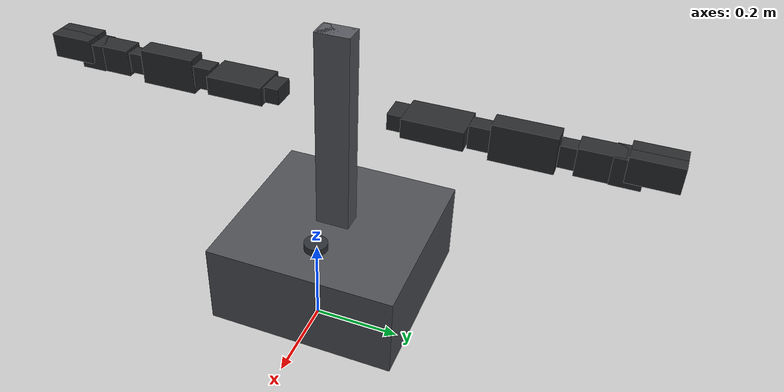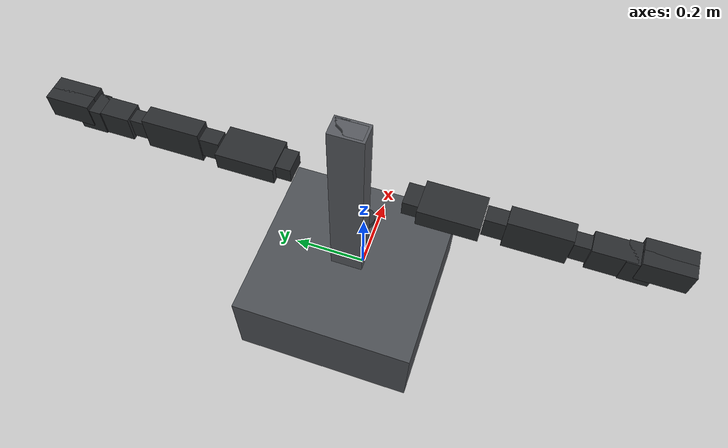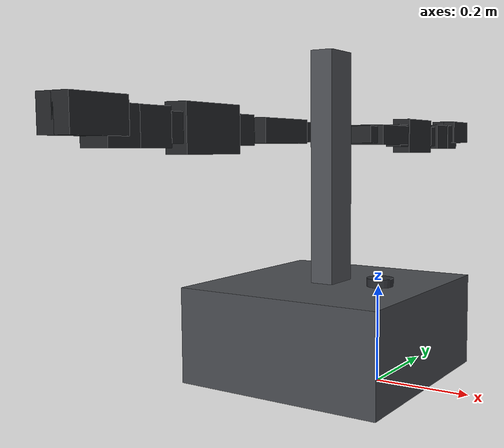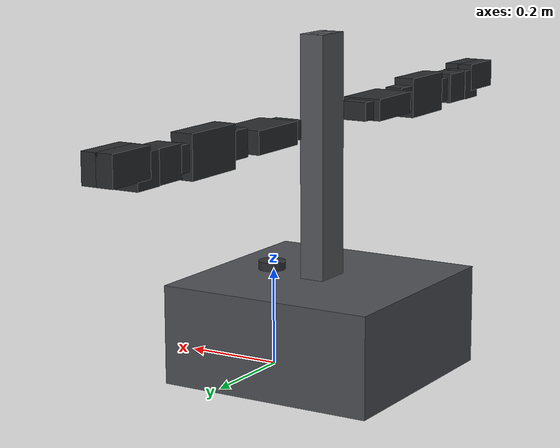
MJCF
<?xml version='1.0' encoding='utf-8'?>
<mujoco model="nori">
  <compiler angle="radian" />

  <worldbody>
    <body name="base_link" pos="0 0 0"><freejoint name="base_freejoint" /><geom name="base_body" type="box" size="0.225 0.225 0.10" pos="-0.113 0 0.10" mass="12.0" rgba="0.30 0.31 0.33 1" /><geom size="0.175 0.1 0.02" pos="-0.133275 0 0.105828" type="box" rgba="0.8 0.81 0.83 1" />
    <geom size="0.0254" pos="-0.273275 0.075 0.0254" rgba="0.07 0.07 0.08 1" />
    <geom size="0.0254" pos="-0.273275 -0.075 0.0254" rgba="0.07 0.07 0.08 1" />
    <geom size="0.0193763 0.0344513 0.2575" pos="-0.113523 0 0.428928" type="box" rgba="0.34 0.35 0.37 1" />
    <geom size="0.0278 0.02065" pos="0.00422459 0 0.196478" type="cylinder" rgba="0.18 0.19 0.21 1" />
    <geom size="0.002625 0.001925 0.0006" pos="0.0184336 -0.0809077 0.134028" type="box" rgba="0.18 0.19 0.21 1" />
    <body name="left_wheel_link" pos="0 0.15 0.0762">
      <inertial pos="0 0 0" quat="0.5 0.5 -0.5 0.5" mass="0.437" diaginertia="0.00126871 0.000657848 0.000657848" />
      <geom size="0.0762 0.0127" quat="0.707107 0.707107 0 0" type="cylinder" rgba="0.07 0.07 0.08 1" />
    </body>
    <body name="right_wheel_link" pos="0 -0.15 0.0762">
      <inertial pos="0 0 0" quat="0.5 0.5 -0.5 0.5" mass="0.437" diaginertia="0.00126871 0.000657848 0.000657848" />
      <geom size="0.0762 0.0127" quat="0.707107 0.707107 0 0" type="cylinder" rgba="0.07 0.07 0.08 1" />
    </body>
    <body name="lift_top_link" pos="-0.113523 0 0.428928">
      <inertial pos="0 -0.0564311 0" mass="4.31" diaginertia="0.0829775 0.0468633 0.0419389" />
      <joint name="lift_extension_joint" pos="0 0 0" axis="0 0 1" type="slide" range="0 0.7" actuatorfrcrange="-1 1" damping="1" />
      <geom size="0.0253762 0.0404513 0.2575" type="box" rgba="0.34 0.35 0.37 1" />
      <body name="left_shoulder_pitch_link" pos="-2.23e-06 0.125 0.0869827" quat="0 0 0 1">
        <inertial pos="0 -0.0235 0" quat="0 0.707107 0 0.707107" mass="0.4" diaginertia="0.000176679 0.00015184 0.000122428" />
        <joint name="left_shoulder_pitch_joint" pos="0 0 0" axis="0 1 0" range="-3.14159 3.14159" actuatorfrcrange="-4 4" damping="0.1" />
        <geom size="0.0278 0.0235 0.01913" pos="0 -0.0235 0" type="box" rgba="0.16 0.17 0.18 1" />
        <body name="left_shoulder_roll_link" pos="0 -0.0567 0" quat="0.707107 -0.707107 0 0">
          <inertial pos="0 0 -0.0455" quat="0.707107 0 0 0.707107" mass="0.252" diaginertia="0.000529493 0.00042525 0.000189293" />
          <joint name="left_shoulder_roll_joint" pos="0 0 0" axis="1 0 0" range="-1.5708 1.5708" actuatorfrcrange="-4 4" damping="0.1" />
          <geom size="0.0418 0.0225 0.0675" pos="0 0 -0.0455" type="box" rgba="0.16 0.17 0.18 1" />
          <body name="left_bicep_yaw_link" pos="0 0 -0.115">
            <inertial pos="0 0 -0.04163" mass="0.175" diaginertia="0.000143778 0.000122442 6.40301e-05" />
            <joint name="left_bicep_yaw_joint" pos="0 0 0" axis="0 0 1" range="-3.14159 3.14159" actuatorfrcrange="-4 4" damping="0.1" />
            <geom size="0.01913 0.02705 0.04163" pos="0 0 -0.04163" type="box" rgba="0.16 0.17 0.18 1" />
            <body name="left_elbow_pitch_link" pos="0 0 -0.06736">
              <inertial pos="0 0 -0.0455" mass="0.254" diaginertia="0.000533695 0.000428625 0.000190795" />
              <joint name="left_elbow_pitch_joint" pos="0 0 0" axis="0 1 0" range="-1.5708 1.5708" actuatorfrcrange="-4 4" damping="0.1" />
              <geom size="0.0418 0.0225 0.0675" pos="0 0 -0.0455" quat="0.707107 0 0 0.707107" type="box" rgba="0.16 0.17 0.18 1" />
              <body name="left_forearm_yaw_link" pos="0 0 -0.115">
                <inertial pos="0 0 -0.0282" mass="0.148" diaginertia="7.00652e-05 5.45133e-05 4.61148e-05" />
                <joint name="left_forearm_yaw_joint" pos="0 0 0" axis="0 0 1" range="-3.14159 3.14159" actuatorfrcrange="-4 4" damping="0.1" />
                <geom size="0.0176 0.025 0.0282" pos="0 0 -0.0282" type="box" rgba="0.16 0.17 0.18 1" />
                <body name="left_wrist_pitch_link" pos="0 0 -0.0462">
                  <inertial pos="0 0 -0.033" mass="0.09" diaginertia="9.08967e-05 7.95e-05 4.88967e-05" />
                  <joint name="left_wrist_pitch_joint" pos="0 0 0" axis="0 1 0" range="-1.5708 1.5708" actuatorfrcrange="-4 4" damping="0.1" />
                  <geom size="0.025 0.0317 0.045" pos="0 0 -0.033" type="box" rgba="0.16 0.17 0.18 1" />
                  <body name="left_wrist_roll_link" pos="0 0 -0.0678" quat="0 0 0 1">
                    <inertial pos="0 0 -0.0188922" quat="0.707107 0.707107 0 0" mass="0.142" diaginertia="9.27362e-05 8.36868e-05 8.12934e-05" />
                    <joint name="left_wrist_roll_joint" pos="0 0 0" axis="-1 0 0" range="-1.5708 1.5708" actuatorfrcrange="-4 4" damping="0.1" />
                    <geom size="0.027625 0.0317 0.0308922" pos="0 0 -0.0188922" type="box" rgba="0.16 0.17 0.18 1" />
                    <body name="left_gripper_link" pos="0.0174 -0.0089 -0.0322843" quat="0 0 0 1">
                      <inertial pos="0 -0.023 -0.035" mass="0.013" diaginertia="1.53617e-05 1.29697e-05 4.89667e-06" />
                      <joint name="left_gripper_joint" pos="0 0 0" axis="0 1 0" range="0 1.5708" actuatorfrcrange="-4 4" damping="0.1" />
                      <geom size="0.017 0.029 0.052" pos="0 -0.023 -0.035" type="box" rgba="0.16 0.17 0.18 1" />
                    </body>
                    <body name="left_gripper_idler_link" pos="-0.0126 -0.0089 -0.0322843" quat="0 0 0 1">
                      <inertial pos="0 -0.023 -0.035" mass="0.013" diaginertia="1.53617e-05 1.29697e-05 4.89667e-06" />
                      <joint name="left_gripper_idler_joint" pos="0 0 0" axis="0 1 0" range="-1.5708 0" actuatorfrcrange="-4 4" damping="0.1" />
                      <geom size="0.017 0.029 0.052" pos="0 -0.023 -0.035" type="box" rgba="0.16 0.17 0.18 1" />
                    </body>
                  <camera name="left_gripper_camera" pos="0.0 -0.02 -0.05" mode="fixed" xyaxes="0 1 0  0 0 1" /></body>
                </body>
              </body>
            </body>
          </body>
        </body>
      </body>
      <body name="right_shoulder_pitch_link" pos="-2.23e-06 -0.125 0.0869827" quat="0 0 0 1">
        <inertial pos="0 0.0235 0" quat="0 0.707107 0 0.707107" mass="0.4" diaginertia="0.000176679 0.00015184 0.000122428" />
        <joint name="right_shoulder_pitch_joint" pos="0 0 0" axis="0 1 0" range="-3.14159 3.14159" actuatorfrcrange="-4 4" damping="0.1" />
        <geom size="0.0278 0.0235 0.01913" pos="0 0.0235 0" type="box" rgba="0.16 0.17 0.18 1" />
        <body name="right_shoulder_roll_link" pos="0 0.0567 0" quat="0.707107 0.707107 0 0">
          <inertial pos="0 0 -0.0455" quat="0.707107 0 0 0.707107" mass="0.252" diaginertia="0.000529493 0.00042525 0.000189293" />
          <joint name="right_shoulder_roll_joint" pos="0 0 0" axis="1 0 0" range="-1.5708 1.5708" actuatorfrcrange="-4 4" damping="0.1" />
          <geom size="0.0418 0.0225 0.0675" pos="0 0 -0.0455" type="box" rgba="0.16 0.17 0.18 1" />
          <body name="right_bicep_yaw_link" pos="0 0 -0.115">
            <inertial pos="0 0 -0.04163" mass="0.175" diaginertia="0.000143778 0.000122442 6.40301e-05" />
            <joint name="right_bicep_yaw_joint" pos="0 0 0" axis="0 0 1" range="-3.14159 3.14159" actuatorfrcrange="-4 4" damping="0.1" />
            <geom size="0.01913 0.02705 0.04163" pos="0 0 -0.04163" type="box" rgba="0.16 0.17 0.18 1" />
            <body name="right_elbow_pitch_link" pos="0 0 -0.06736">
              <inertial pos="0 0 -0.0455" mass="0.254" diaginertia="0.000533695 0.000428625 0.000190795" />
              <joint name="right_elbow_pitch_joint" pos="0 0 0" axis="0 1 0" range="-1.5708 1.5708" actuatorfrcrange="-4 4" damping="0.1" />
              <geom size="0.0418 0.0225 0.0675" pos="0 0 -0.0455" quat="0.707107 0 0 0.707107" type="box" rgba="0.16 0.17 0.18 1" />
              <body name="right_forearm_yaw_link" pos="0 0 -0.115">
                <inertial pos="0 0 -0.0282" mass="0.148" diaginertia="7.00652e-05 5.45133e-05 4.61148e-05" />
                <joint name="right_forearm_yaw_joint" pos="0 0 0" axis="0 0 1" range="-3.14159 3.14159" actuatorfrcrange="-4 4" damping="0.1" />
                <geom size="0.0176 0.025 0.0282" pos="0 0 -0.0282" type="box" rgba="0.16 0.17 0.18 1" />
                <body name="right_wrist_pitch_link" pos="0 0 -0.0462">
                  <inertial pos="0 0 -0.033" mass="0.09" diaginertia="9.08967e-05 7.95e-05 4.88967e-05" />
                  <joint name="right_wrist_pitch_joint" pos="0 0 0" axis="0 1 0" range="-1.5708 1.5708" actuatorfrcrange="-4 4" damping="0.1" />
                  <geom size="0.025 0.0317 0.045" pos="0 0 -0.033" type="box" rgba="0.16 0.17 0.18 1" />
                  <body name="right_wrist_roll_link" pos="0 0 -0.0678" quat="0 0 0 1">
                    <inertial pos="0 0 -0.0188922" quat="0.707107 0.707107 0 0" mass="0.142" diaginertia="9.27362e-05 8.36868e-05 8.12934e-05" />
                    <joint name="right_wrist_roll_joint" pos="0 0 0" axis="-1 0 0" range="-1.5708 1.5708" actuatorfrcrange="-4 4" damping="0.1" />
                    <geom size="0.027625 0.0317 0.0308922" pos="0 0 -0.0188922" type="box" rgba="0.16 0.17 0.18 1" />
                    <body name="right_gripper_link" pos="0.0174 0.0089 -0.0322843" quat="0 0 0 1">
                      <inertial pos="0 0.023 -0.035" mass="0.013" diaginertia="1.53617e-05 1.29697e-05 4.89667e-06" />
                      <joint name="right_gripper_joint" pos="0 0 0" axis="0 1 0" range="0 1.5708" actuatorfrcrange="-4 4" damping="0.1" />
                      <geom size="0.017 0.029 0.052" pos="0 0.023 -0.035" type="box" rgba="0.16 0.17 0.18 1" />
                    </body>
                    <body name="right_gripper_idler_link" pos="-0.0126 0.0089 -0.0322843" quat="0 0 0 1">
                      <inertial pos="0 0.023 -0.035" mass="0.013" diaginertia="1.53617e-05 1.29697e-05 4.89667e-06" />
                      <joint name="right_gripper_idler_joint" pos="0 0 0" axis="0 1 0" range="-1.5708 0" actuatorfrcrange="-4 4" damping="0.1" />
                      <geom size="0.017 0.029 0.052" pos="0 0.023 -0.035" type="box" rgba="0.16 0.17 0.18 1" />
                    </body>
                  <camera name="right_gripper_camera" pos="0.0 0.02 -0.05" mode="fixed" xyaxes="0 1 0  0 0 1" /></body>
                </body>
              </body>
            </body>
          </body>
        </body>
      </body>
    <camera name="head_camera" pos="0.05 0 0.10" mode="fixed" xyaxes="0 1 0  0 0 1" /><camera name="neck_camera" pos="-0.02 0 0.02" mode="fixed" xyaxes="0 1 0  0 0 1" /></body>
    <body name="lift_middle_link" pos="-0.113523 0 0.428928">
      <inertial pos="0 0 0" mass="2.268" diaginertia="0.0511879 0.0505061 0.00143889" />
      <joint name="lift_middle_joint" pos="0 0 0" axis="0 0 1" type="slide" range="0 0.35" actuatorfrcrange="-1 1" damping="1" />
      <geom size="0.0223763 0.0374512 0.2575" type="box" rgba="0.34 0.35 0.37 1" />
    </body>
  </body></worldbody>
<actuator><position joint="lift_extension_joint" name="lift_extension_joint" kp="800" /><position joint="left_shoulder_pitch_joint" name="left_shoulder_pitch_joint" kp="1000" /><position joint="left_shoulder_roll_joint" name="left_shoulder_roll_joint" kp="1000" /><position joint="left_bicep_yaw_joint" name="left_bicep_yaw_joint" kp="1000" /><position joint="left_elbow_pitch_joint" name="left_elbow_pitch_joint" kp="1000" /><position joint="left_forearm_yaw_joint" name="left_forearm_yaw_joint" kp="1000" /><position joint="left_wrist_pitch_joint" name="left_wrist_pitch_joint" kp="1000" /><position joint="left_wrist_roll_joint" name="left_wrist_roll_joint" kp="1000" /><position joint="right_shoulder_pitch_joint" name="right_shoulder_pitch_joint" kp="1000" /><position joint="right_shoulder_roll_joint" name="right_shoulder_roll_joint" kp="1000" /><position joint="right_bicep_yaw_joint" name="right_bicep_yaw_joint" kp="1000" /><position joint="right_elbow_pitch_joint" name="right_elbow_pitch_joint" kp="1000" /><position joint="right_forearm_yaw_joint" name="right_forearm_yaw_joint" kp="1000" /><position joint="right_wrist_pitch_joint" name="right_wrist_pitch_joint" kp="1000" /><position joint="right_wrist_roll_joint" name="right_wrist_roll_joint" kp="1000" /><position joint="left_gripper_joint" name="left_gripper_joint" kp="200" /><position joint="right_gripper_joint" name="right_gripper_joint" kp="200" /></actuator><equality><joint name="left_gripper_idler_joint_mimic" joint1="left_gripper_joint" joint2="left_gripper_idler_joint" polycoef="0 -1 0 0 0" solref="0.001 1" solimp="0.99 0.999 0.001" /><joint name="right_gripper_idler_joint_mimic" joint1="right_gripper_joint" joint2="right_gripper_idler_joint" polycoef="0 -1 0 0 0" solref="0.001 1" solimp="0.99 0.999 0.001" /><joint name="lift_middle_joint_mimic" joint1="lift_extension_joint" joint2="lift_middle_joint" polycoef="0 0.5 0 0 0" solref="0.001 1" solimp="0.99 0.999 0.001" /></equality></mujoco>
